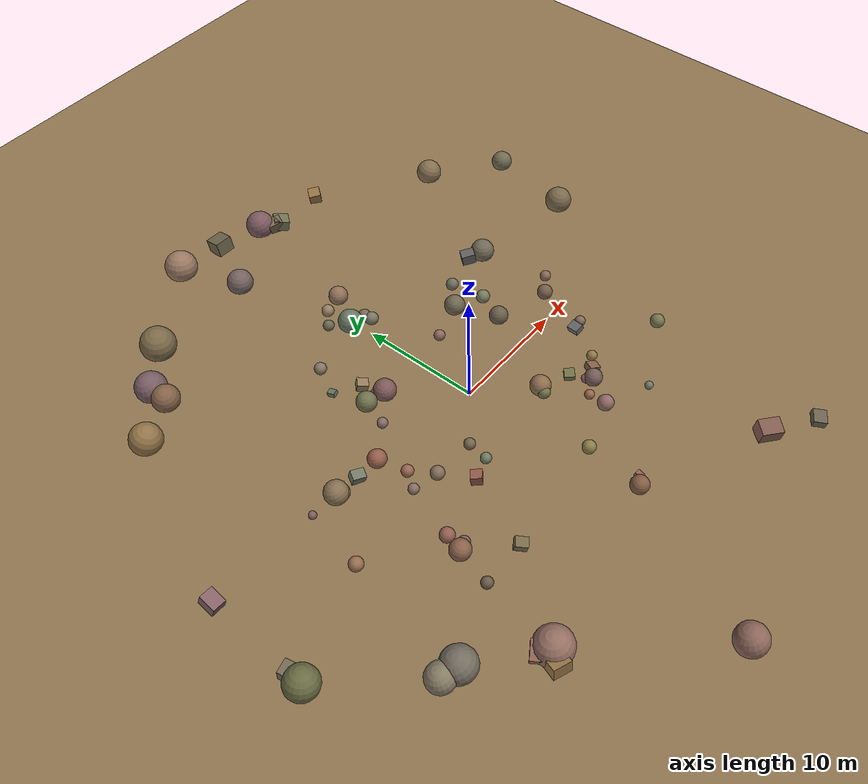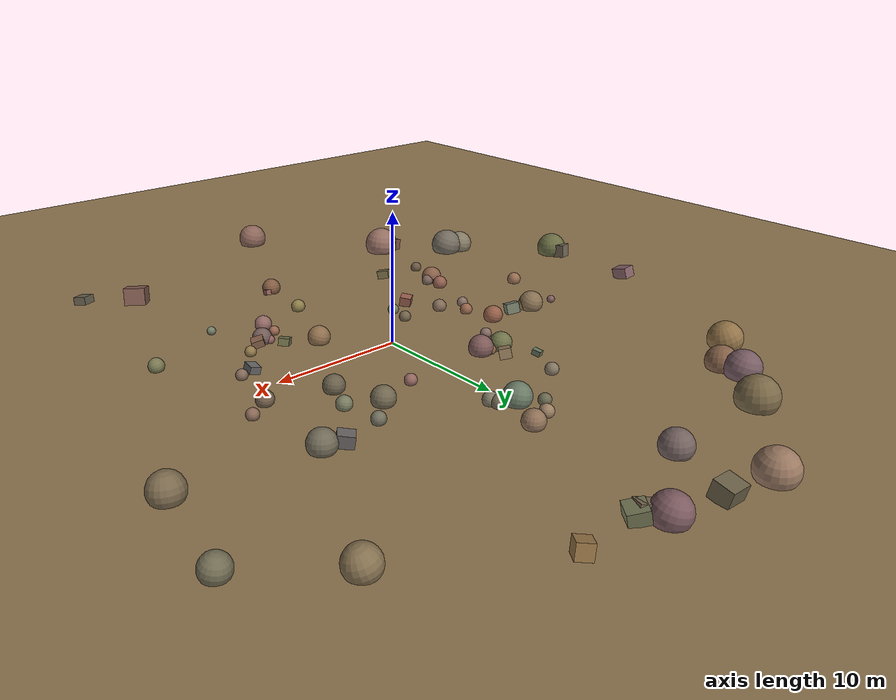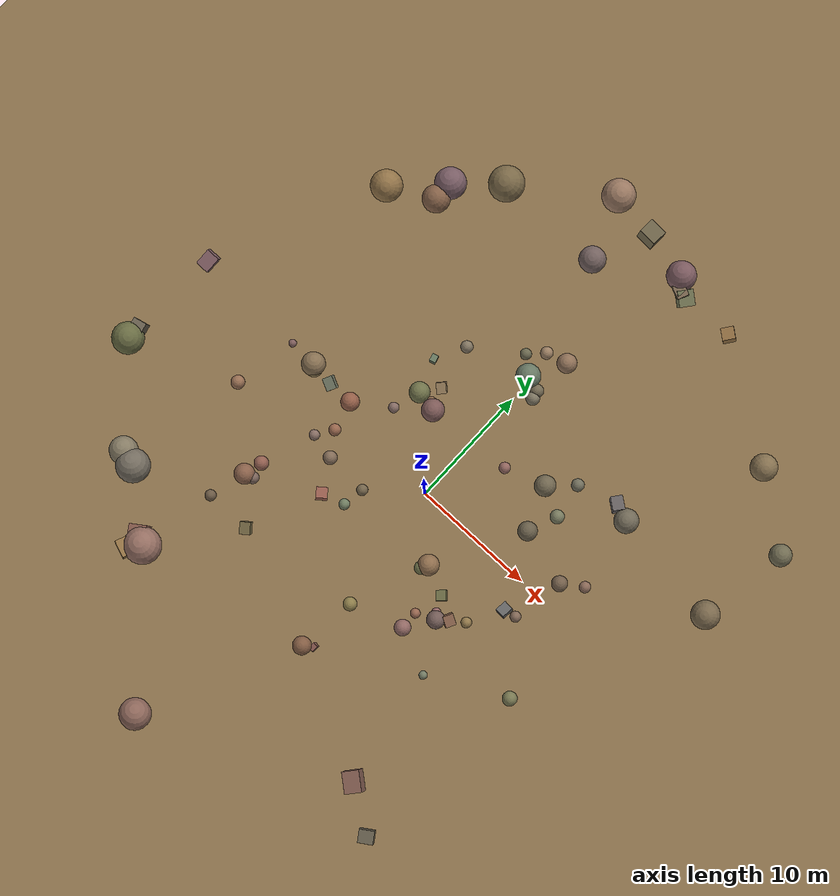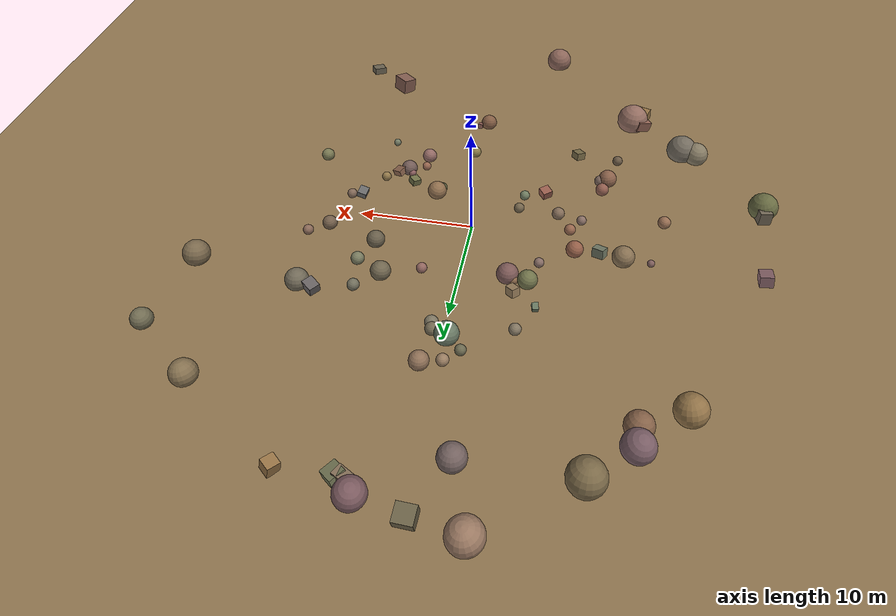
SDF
<?xml version="1.0" ?>
<sdf version="1.8">
  <world name="terrain_world">
    <physics name="1ms" type="ignored">
      <max_step_size>0.001</max_step_size>
      <real_time_factor>1.0</real_time_factor>
    </physics>

    <plugin filename="gz-sim-physics-system" name="gz::sim::systems::Physics"/>
    <plugin filename="gz-sim-user-commands-system" name="gz::sim::systems::UserCommands"/>
    <plugin filename="gz-sim-scene-broadcaster-system" name="gz::sim::systems::SceneBroadcaster"/>
    <plugin filename="gz-sim-contact-system" name="gz::sim::systems::Contact"/>
    <plugin filename="gz-sim-sensors-system" name="gz::sim::systems::Sensors">
      <render_engine>ogre2</render_engine>
    </plugin>
    <plugin filename="gz-sim-imu-system" name="gz::sim::systems::Imu"/>

    <gui fullscreen="0">
      <plugin filename="GzScene3D" name="3D View">
        <gz-gui>
          <title>3D View</title>
          <property type="bool" key="showTitleBar">false</property>
        </gz-gui>
        <engine>ogre2</engine>
        <scene>scene</scene>
        <ambient_light>0.5 0.45 0.4</ambient_light>
        <background_color>0.7 0.75 0.85</background_color>
        <camera_pose>0 0 40 0 1.5708 0</camera_pose>
      </plugin>
      <plugin filename="WorldControl" name="World control">
        <gz-gui><title>World control</title></gz-gui>
        <play_pause>true</play_pause>
        <step>true</step>
      </plugin>
      <plugin filename="WorldStats" name="World stats">
        <gz-gui><title>World stats</title></gz-gui>
        <sim_time>true</sim_time>
        <real_time>true</real_time>
        <real_time_factor>true</real_time_factor>
      </plugin>
    </gui>

    <light type="directional" name="sun">
      <cast_shadows>true</cast_shadows>
      <pose>0 0 50 0 0 0</pose>
      <diffuse>0.9 0.85 0.7 1</diffuse>
      <specular>0.3 0.3 0.2 1</specular>
      <attenuation>
        <range>1000</range>
        <constant>0.9</constant>
        <linear>0.01</linear>
        <quadratic>0.001</quadratic>
      </attenuation>
      <direction>-0.4 0.1 -0.9</direction>
    </light>

    <model name="ground_plane">
      <static>true</static>
      <link name="link">
        <collision name="collision">
          <geometry>
            <plane>
              <normal>0 0 1</normal>
              <size>100 100</size>
            </plane>
          </geometry>
        </collision>
        <visual name="visual">
          <geometry>
            <plane>
              <normal>0 0 1</normal>
              <size>100 100</size>
            </plane>
          </geometry>
          <material>
            <ambient>0.55 0.45 0.3 1</ambient>
            <diffuse>0.55 0.45 0.3 1</diffuse>
          </material>
        </visual>
      </link>
    </model>

    <model name="rock_perimeter_000">
      <static>true</static>
      <pose>23.36 14.89 0.36 0.14 -0.11 4.28</pose>
      <link name="link">
        <collision name="collision">
          <geometry><sphere><radius>0.90</radius></sphere></geometry>
        </collision>
        <visual name="visual">
          <geometry><sphere><radius>0.90</radius></sphere></geometry>
          <material><ambient>0.44 0.42 0.32 1</ambient><diffuse>0.44 0.42 0.32 1</diffuse></material>
        </visual>
      </link>
    </model>

    <model name="rock_perimeter_001">
      <static>true</static>
      <pose>14.36 -22.25 0.40 -0.13 0.10 3.72</pose>
      <link name="link">
        <collision name="collision">
          <geometry><box><size>1.20 1.06 0.64</size></box></geometry>
        </collision>
        <visual name="visual">
          <geometry><box><size>1.20 1.06 0.64</size></box></geometry>
          <material><ambient>0.41 0.38 0.31 1</ambient><diffuse>0.41 0.38 0.31 1</diffuse></material>
        </visual>
      </link>
    </model>

    <model name="rock_perimeter_002">
      <static>true</static>
      <pose>-4.89 -27.36 0.51 -0.15 0.29 1.37</pose>
      <link name="link">
        <collision name="collision">
          <geometry><sphere><radius>1.26</radius></sphere></geometry>
        </collision>
        <visual name="visual">
          <geometry><sphere><radius>1.26</radius></sphere></geometry>
          <material><ambient>0.55 0.40 0.35 1</ambient><diffuse>0.55 0.40 0.35 1</diffuse></material>
        </visual>
      </link>
    </model>

    <model name="rock_perimeter_003">
      <static>true</static>
      <pose>-18.62 15.82 0.52 -0.22 0.29 4.71</pose>
      <link name="link">
        <collision name="collision">
          <geometry><sphere><radius>1.30</radius></sphere></geometry>
        </collision>
        <visual name="visual">
          <geometry><sphere><radius>1.30</radius></sphere></geometry>
          <material><ambient>0.57 0.45 0.28 1</ambient><diffuse>0.57 0.45 0.28 1</diffuse></material>
        </visual>
      </link>
    </model>

    <model name="rock_perimeter_004">
      <static>true</static>
      <pose>-25.19 -5.50 0.50 -0.06 -0.11 1.79</pose>
      <link name="link">
        <collision name="collision">
          <geometry><box><size>1.15 1.11 1.13</size></box></geometry>
        </collision>
        <visual name="visual">
          <geometry><box><size>1.15 1.11 1.13</size></box></geometry>
          <material><ambient>0.44 0.40 0.33 1</ambient><diffuse>0.44 0.40 0.33 1</diffuse></material>
        </visual>
      </link>
    </model>

    <model name="rock_perimeter_005">
      <static>true</static>
      <pose>3.19 26.04 0.48 -0.10 -0.20 6.10</pose>
      <link name="link">
        <collision name="collision">
          <geometry><sphere><radius>1.20</radius></sphere></geometry>
        </collision>
        <visual name="visual">
          <geometry><sphere><radius>1.20</radius></sphere></geometry>
          <material><ambient>0.48 0.35 0.37 1</ambient><diffuse>0.48 0.35 0.37 1</diffuse></material>
        </visual>
      </link>
    </model>

    <model name="rock_perimeter_006">
      <static>true</static>
      <pose>22.13 7.57 0.46 -0.09 0.19 4.01</pose>
      <link name="link">
        <collision name="collision">
          <geometry><sphere><radius>1.15</radius></sphere></geometry>
        </collision>
        <visual name="visual">
          <geometry><sphere><radius>1.15</radius></sphere></geometry>
          <material><ambient>0.48 0.41 0.30 1</ambient><diffuse>0.48 0.41 0.30 1</diffuse></material>
        </visual>
      </link>
    </model>

    <model name="rock_perimeter_007">
      <static>true</static>
      <pose>8.99 25.02 0.43 -0.19 0.09 2.46</pose>
      <link name="link">
        <collision name="collision">
          <geometry><box><size>1.01 1.02 1.01</size></box></geometry>
        </collision>
        <visual name="visual">
          <geometry><box><size>1.01 1.02 1.01</size></box></geometry>
          <material><ambient>0.59 0.45 0.27 1</ambient><diffuse>0.59 0.45 0.27 1</diffuse></material>
        </visual>
      </link>
    </model>

    <model name="rock_perimeter_008">
      <static>true</static>
      <pose>10.84 -19.88 0.58 -0.19 -0.03 2.45</pose>
      <link name="link">
        <collision name="collision">
          <geometry><box><size>1.71 1.35 1.39</size></box></geometry>
        </collision>
        <visual name="visual">
          <geometry><box><size>1.71 1.35 1.39</size></box></geometry>
          <material><ambient>0.51 0.36 0.31 1</ambient><diffuse>0.51 0.36 0.31 1</diffuse></material>
        </visual>
      </link>
    </model>

    <model name="rock_perimeter_009">
      <static>true</static>
      <pose>-15.06 17.68 0.45 0.20 -0.15 0.00</pose>
      <link name="link">
        <collision name="collision">
          <geometry><sphere><radius>1.13</radius></sphere></geometry>
        </collision>
        <visual name="visual">
          <geometry><sphere><radius>1.13</radius></sphere></geometry>
          <material><ambient>0.52 0.38 0.28 1</ambient><diffuse>0.52 0.38 0.28 1</diffuse></material>
        </visual>
      </link>
    </model>

    <model name="rock_perimeter_010">
      <static>true</static>
      <pose>4.58 24.91 0.44 0.08 -0.23 2.47</pose>
      <link name="link">
        <collision name="collision">
          <geometry><box><size>1.29 1.27 0.94</size></box></geometry>
        </collision>
        <visual name="visual">
          <geometry><box><size>1.29 1.27 0.94</size></box></geometry>
          <material><ambient>0.44 0.45 0.32 1</ambient><diffuse>0.44 0.45 0.32 1</diffuse></material>
        </visual>
      </link>
    </model>

    <model name="rock_perimeter_011">
      <static>true</static>
      <pose>17.90 19.11 0.44 0.17 -0.27 1.75</pose>
      <link name="link">
        <collision name="collision">
          <geometry><sphere><radius>1.09</radius></sphere></geometry>
        </collision>
        <visual name="visual">
          <geometry><sphere><radius>1.09</radius></sphere></geometry>
          <material><ambient>0.52 0.44 0.31 1</ambient><diffuse>0.52 0.44 0.31 1</diffuse></material>
        </visual>
      </link>
    </model>

    <model name="rock_perimeter_012">
      <static>true</static>
      <pose>-18.09 -13.61 0.55 0.16 -0.25 4.84</pose>
      <link name="link">
        <collision name="collision">
          <geometry><sphere><radius>1.37</radius></sphere></geometry>
        </collision>
        <visual name="visual">
          <geometry><sphere><radius>1.37</radius></sphere></geometry>
          <material><ambient>0.45 0.42 0.37 1</ambient><diffuse>0.45 0.42 0.37 1</diffuse></material>
        </visual>
      </link>
    </model>

    <model name="rock_perimeter_013">
      <static>true</static>
      <pose>-0.73 26.89 0.52 -0.00 0.20 1.53</pose>
      <link name="link">
        <collision name="collision">
          <geometry><box><size>1.38 1.49 1.24</size></box></geometry>
        </collision>
        <visual name="visual">
          <geometry><box><size>1.38 1.49 1.24</size></box></geometry>
          <material><ambient>0.42 0.38 0.28 1</ambient><diffuse>0.42 0.38 0.28 1</diffuse></material>
        </visual>
      </link>
    </model>

    <model name="rock_perimeter_014">
      <static>true</static>
      <pose>-2.80 22.33 0.44 0.05 0.04 5.76</pose>
      <link name="link">
        <collision name="collision">
          <geometry><sphere><radius>1.09</radius></sphere></geometry>
        </collision>
        <visual name="visual">
          <geometry><sphere><radius>1.09</radius></sphere></geometry>
          <material><ambient>0.45 0.38 0.37 1</ambient><diffuse>0.45 0.38 0.37 1</diffuse></material>
        </visual>
      </link>
    </model>

    <model name="rock_perimeter_015">
      <static>true</static>
      <pose>-24.80 2.06 0.47 -0.27 -0.11 3.15</pose>
      <link name="link">
        <collision name="collision">
          <geometry><box><size>1.11 1.38 0.94</size></box></geometry>
        </collision>
        <visual name="visual">
          <geometry><box><size>1.11 1.38 0.94</size></box></geometry>
          <material><ambient>0.52 0.38 0.40 1</ambient><diffuse>0.52 0.38 0.40 1</diffuse></material>
        </visual>
      </link>
    </model>

    <model name="rock_perimeter_016">
      <static>true</static>
      <pose>4.03 25.03 0.45 -0.12 0.18 2.70</pose>
      <link name="link">
        <collision name="collision">
          <geometry><box><size>1.23 0.94 1.03</size></box></geometry>
        </collision>
        <visual name="visual">
          <geometry><box><size>1.23 0.94 1.03</size></box></geometry>
          <material><ambient>0.49 0.41 0.32 1</ambient><diffuse>0.49 0.41 0.32 1</diffuse></material>
        </visual>
      </link>
    </model>

    <model name="rock_perimeter_017">
      <static>true</static>
      <pose>-4.67 27.48 0.54 0.02 -0.13 3.42</pose>
      <link name="link">
        <collision name="collision">
          <geometry><sphere><radius>1.36</radius></sphere></geometry>
        </collision>
        <visual name="visual">
          <geometry><sphere><radius>1.36</radius></sphere></geometry>
          <material><ambient>0.60 0.47 0.38 1</ambient><diffuse>0.60 0.47 0.38 1</diffuse></material>
        </visual>
      </link>
    </model>

    <model name="rock_perimeter_018">
      <static>true</static>
      <pose>-15.06 19.34 0.52 0.24 -0.04 4.25</pose>
      <link name="link">
        <collision name="collision">
          <geometry><sphere><radius>1.29</radius></sphere></geometry>
        </collision>
        <visual name="visual">
          <geometry><sphere><radius>1.29</radius></sphere></geometry>
          <material><ambient>0.47 0.36 0.39 1</ambient><diffuse>0.47 0.36 0.39 1</diffuse></material>
        </visual>
      </link>
    </model>

    <model name="rock_perimeter_019">
      <static>true</static>
      <pose>-14.11 -17.16 0.52 -0.28 -0.02 2.16</pose>
      <link name="link">
        <collision name="collision">
          <geometry><box><size>1.40 1.48 0.98</size></box></geometry>
        </collision>
        <visual name="visual">
          <geometry><box><size>1.40 1.48 0.98</size></box></geometry>
          <material><ambient>0.56 0.38 0.32 1</ambient><diffuse>0.56 0.38 0.32 1</diffuse></material>
        </visual>
      </link>
    </model>

    <model name="rock_perimeter_020">
      <static>true</static>
      <pose>-11.78 22.26 0.59 0.12 -0.12 0.61</pose>
      <link name="link">
        <collision name="collision">
          <geometry><sphere><radius>1.46</radius></sphere></geometry>
        </collision>
        <visual name="visual">
          <geometry><sphere><radius>1.46</radius></sphere></geometry>
          <material><ambient>0.48 0.41 0.28 1</ambient><diffuse>0.48 0.41 0.28 1</diffuse></material>
        </visual>
      </link>
    </model>

    <model name="rock_perimeter_021">
      <static>true</static>
      <pose>-14.12 -18.47 0.58 -0.14 0.03 5.92</pose>
      <link name="link">
        <collision name="collision">
          <geometry><box><size>1.42 1.36 1.07</size></box></geometry>
        </collision>
        <visual name="visual">
          <geometry><box><size>1.42 1.36 1.07</size></box></geometry>
          <material><ambient>0.58 0.45 0.27 1</ambient><diffuse>0.58 0.45 0.27 1</diffuse></material>
        </visual>
      </link>
    </model>

    <model name="rock_perimeter_022">
      <static>true</static>
      <pose>-25.23 -6.62 0.52 0.04 -0.21 3.20</pose>
      <link name="link">
        <collision name="collision">
          <geometry><sphere><radius>1.29</radius></sphere></geometry>
        </collision>
        <visual name="visual">
          <geometry><sphere><radius>1.29</radius></sphere></geometry>
          <material><ambient>0.41 0.42 0.26 1</ambient><diffuse>0.41 0.42 0.26 1</diffuse></material>
        </visual>
      </link>
    </model>

    <model name="rock_perimeter_023">
      <static>true</static>
      <pose>-13.29 -17.61 0.60 0.05 -0.09 5.22</pose>
      <link name="link">
        <collision name="collision">
          <geometry><sphere><radius>1.49</radius></sphere></geometry>
        </collision>
        <visual name="visual">
          <geometry><sphere><radius>1.49</radius></sphere></geometry>
          <material><ambient>0.58 0.43 0.38 1</ambient><diffuse>0.58 0.43 0.38 1</diffuse></material>
        </visual>
      </link>
    </model>

    <model name="rock_perimeter_024">
      <static>true</static>
      <pose>-19.45 -13.24 0.45 -0.15 -0.15 0.04</pose>
      <link name="link">
        <collision name="collision">
          <geometry><sphere><radius>1.14</radius></sphere></geometry>
        </collision>
        <visual name="visual">
          <geometry><sphere><radius>1.14</radius></sphere></geometry>
          <material><ambient>0.52 0.48 0.39 1</ambient><diffuse>0.52 0.48 0.39 1</diffuse></material>
        </visual>
      </link>
    </model>

    <model name="rock_cluster_0_0">
      <static>true</static>
      <pose>8.70 5.54 0.23 -0.02 0.25 3.48</pose>
      <link name="link">
        <collision name="collision">
          <geometry><sphere><radius>0.57</radius></sphere></geometry>
        </collision>
        <visual name="visual">
          <geometry><sphere><radius>0.57</radius></sphere></geometry>
          <material><ambient>0.47 0.48 0.37 1</ambient><diffuse>0.47 0.48 0.37 1</diffuse></material>
        </visual>
      </link>
    </model>

    <model name="rock_cluster_0_1">
      <static>true</static>
      <pose>7.76 3.17 0.31 -0.06 0.13 2.89</pose>
      <link name="link">
        <collision name="collision">
          <geometry><sphere><radius>0.78</radius></sphere></geometry>
        </collision>
        <visual name="visual">
          <geometry><sphere><radius>0.78</radius></sphere></geometry>
          <material><ambient>0.41 0.37 0.29 1</ambient><diffuse>0.41 0.37 0.29 1</diffuse></material>
        </visual>
      </link>
    </model>

    <model name="rock_cluster_0_2">
      <static>true</static>
      <pose>6.40 6.68 0.34 -0.10 0.16 2.95</pose>
      <link name="link">
        <collision name="collision">
          <geometry><sphere><radius>0.86</radius></sphere></geometry>
        </collision>
        <visual name="visual">
          <geometry><sphere><radius>0.86</radius></sphere></geometry>
          <material><ambient>0.44 0.40 0.31 1</ambient><diffuse>0.44 0.40 0.31 1</diffuse></material>
        </visual>
      </link>
    </model>

    <model name="rock_cluster_0_3">
      <static>true</static>
      <pose>3.16 5.63 0.18 0.14 0.15 0.67</pose>
      <link name="link">
        <collision name="collision">
          <geometry><sphere><radius>0.46</radius></sphere></geometry>
        </collision>
        <visual name="visual">
          <geometry><sphere><radius>0.46</radius></sphere></geometry>
          <material><ambient>0.57 0.40 0.37 1</ambient><diffuse>0.57 0.40 0.37 1</diffuse></material>
        </visual>
      </link>
    </model>

    <model name="rock_cluster_1_0">
      <static>true</static>
      <pose>-6.63 8.21 0.24 0.18 0.04 3.40</pose>
      <link name="link">
        <collision name="collision">
          <geometry><box><size>0.51 0.63 0.40</size></box></geometry>
        </collision>
        <visual name="visual">
          <geometry><box><size>0.51 0.63 0.40</size></box></geometry>
          <material><ambient>0.40 0.46 0.37 1</ambient><diffuse>0.40 0.46 0.37 1</diffuse></material>
        </visual>
      </link>
    </model>

    <model name="rock_cluster_1_1">
      <static>true</static>
      <pose>-4.50 5.61 0.17 -0.02 -0.05 5.52</pose>
      <link name="link">
        <collision name="collision">
          <geometry><sphere><radius>0.42</radius></sphere></geometry>
        </collision>
        <visual name="visual">
          <geometry><sphere><radius>0.42</radius></sphere></geometry>
          <material><ambient>0.55 0.41 0.29 1</ambient><diffuse>0.55 0.41 0.29 1</diffuse></material>
        </visual>
      </link>
    </model>

    <model name="rock_cluster_1_2">
      <static>true</static>
      <pose>-4.64 6.93 0.36 0.14 0.22 5.56</pose>
      <link name="link">
        <collision name="collision">
          <geometry><box><size>0.89 0.77 0.77</size></box></geometry>
        </collision>
        <visual name="visual">
          <geometry><box><size>0.89 0.77 0.77</size></box></geometry>
          <material><ambient>0.58 0.48 0.35 1</ambient><diffuse>0.58 0.48 0.35 1</diffuse></material>
        </visual>
      </link>
    </model>

    <model name="rock_cluster_1_3">
      <static>true</static>
      <pose>-3.96 5.18 0.37 0.06 0.06 4.32</pose>
      <link name="link">
        <collision name="collision">
          <geometry><sphere><radius>0.92</radius></sphere></geometry>
        </collision>
        <visual name="visual">
          <geometry><sphere><radius>0.92</radius></sphere></geometry>
          <material><ambient>0.49 0.35 0.34 1</ambient><diffuse>0.49 0.35 0.34 1</diffuse></material>
        </visual>
      </link>
    </model>

    <model name="rock_cluster_1_4">
      <static>true</static>
      <pose>-5.67 5.53 0.34 0.23 0.12 4.33</pose>
      <link name="link">
        <collision name="collision">
          <geometry><sphere><radius>0.84</radius></sphere></geometry>
        </collision>
        <visual name="visual">
          <geometry><sphere><radius>0.84</radius></sphere></geometry>
          <material><ambient>0.44 0.45 0.29 1</ambient><diffuse>0.44 0.45 0.29 1</diffuse></material>
        </visual>
      </link>
    </model>

    <model name="rock_cluster_2_0">
      <static>true</static>
      <pose>5.68 -8.78 0.26 -0.23 -0.27 1.22</pose>
      <link name="link">
        <collision name="collision">
          <geometry><sphere><radius>0.66</radius></sphere></geometry>
        </collision>
        <visual name="visual">
          <geometry><sphere><radius>0.66</radius></sphere></geometry>
          <material><ambient>0.57 0.41 0.39 1</ambient><diffuse>0.57 0.41 0.39 1</diffuse></material>
        </visual>
      </link>
    </model>

    <model name="rock_cluster_2_1">
      <static>true</static>
      <pose>7.92 -5.98 0.35 -0.28 -0.09 4.24</pose>
      <link name="link">
        <collision name="collision">
          <geometry><box><size>0.85 0.91 0.55</size></box></geometry>
        </collision>
        <visual name="visual">
          <geometry><box><size>0.85 0.91 0.55</size></box></geometry>
          <material><ambient>0.53 0.38 0.29 1</ambient><diffuse>0.53 0.38 0.29 1</diffuse></material>
        </visual>
      </link>
    </model>

    <model name="rock_cluster_2_2">
      <static>true</static>
      <pose>3.90 -3.90 0.34 0.12 0.24 3.20</pose>
      <link name="link">
        <collision name="collision">
          <geometry><sphere><radius>0.85</radius></sphere></geometry>
        </collision>
        <visual name="visual">
          <geometry><sphere><radius>0.85</radius></sphere></geometry>
          <material><ambient>0.56 0.43 0.30 1</ambient><diffuse>0.56 0.43 0.30 1</diffuse></material>
        </visual>
      </link>
    </model>

    <model name="rock_cluster_2_3">
      <static>true</static>
      <pose>6.24 -4.96 0.28 0.04 0.21 3.89</pose>
      <link name="link">
        <collision name="collision">
          <geometry><box><size>0.81 0.83 0.56</size></box></geometry>
        </collision>
        <visual name="visual">
          <geometry><box><size>0.81 0.83 0.56</size></box></geometry>
          <material><ambient>0.44 0.44 0.28 1</ambient><diffuse>0.44 0.44 0.28 1</diffuse></material>
        </visual>
      </link>
    </model>

    <model name="rock_cluster_2_4">
      <static>true</static>
      <pose>7.15 -6.62 0.29 -0.06 0.28 3.29</pose>
      <link name="link">
        <collision name="collision">
          <geometry><sphere><radius>0.73</radius></sphere></geometry>
        </collision>
        <visual name="visual">
          <geometry><sphere><radius>0.73</radius></sphere></geometry>
          <material><ambient>0.45 0.36 0.34 1</ambient><diffuse>0.45 0.36 0.34 1</diffuse></material>
        </visual>
      </link>
    </model>

    <model name="rock_cluster_3_0">
      <static>true</static>
      <pose>-5.90 -5.39 0.32 0.13 -0.07 3.80</pose>
      <link name="link">
        <collision name="collision">
          <geometry><box><size>0.90 0.88 0.75</size></box></geometry>
        </collision>
        <visual name="visual">
          <geometry><box><size>0.90 0.88 0.75</size></box></geometry>
          <material><ambient>0.59 0.36 0.30 1</ambient><diffuse>0.59 0.36 0.30 1</diffuse></material>
        </visual>
      </link>
    </model>

    <model name="rock_cluster_3_1">
      <static>true</static>
      <pose>-4.07 -4.81 0.18 0.05 -0.00 1.66</pose>
      <link name="link">
        <collision name="collision">
          <geometry><sphere><radius>0.44</radius></sphere></geometry>
        </collision>
        <visual name="visual">
          <geometry><sphere><radius>0.44</radius></sphere></geometry>
          <material><ambient>0.44 0.49 0.38 1</ambient><diffuse>0.44 0.49 0.38 1</diffuse></material>
        </visual>
      </link>
    </model>

    <model name="rock_cluster_3_2">
      <static>true</static>
      <pose>-3.80 -3.06 0.18 -0.05 -0.17 4.90</pose>
      <link name="link">
        <collision name="collision">
          <geometry><sphere><radius>0.46</radius></sphere></geometry>
        </collision>
        <visual name="visual">
          <geometry><sphere><radius>0.46</radius></sphere></geometry>
          <material><ambient>0.45 0.39 0.29 1</ambient><diffuse>0.45 0.39 0.29 1</diffuse></material>
        </visual>
      </link>
    </model>

    <model name="rock_cluster_4_0">
      <static>true</static>
      <pose>10.53 -2.52 0.32 0.26 -0.08 4.62</pose>
      <link name="link">
        <collision name="collision">
          <geometry><box><size>0.96 0.82 0.55</size></box></geometry>
        </collision>
        <visual name="visual">
          <geometry><box><size>0.96 0.82 0.55</size></box></geometry>
          <material><ambient>0.40 0.40 0.40 1</ambient><diffuse>0.40 0.40 0.40 1</diffuse></material>
        </visual>
      </link>
    </model>

    <model name="rock_cluster_4_1">
      <static>true</static>
      <pose>12.29 1.83 0.26 -0.03 0.16 1.41</pose>
      <link name="link">
        <collision name="collision">
          <geometry><sphere><radius>0.64</radius></sphere></geometry>
        </collision>
        <visual name="visual">
          <geometry><sphere><radius>0.64</radius></sphere></geometry>
          <material><ambient>0.45 0.37 0.29 1</ambient><diffuse>0.45 0.37 0.29 1</diffuse></material>
        </visual>
      </link>
    </model>

    <model name="rock_cluster_4_2">
      <static>true</static>
      <pose>11.50 -2.32 0.17 0.28 -0.27 5.73</pose>
      <link name="link">
        <collision name="collision">
          <geometry><sphere><radius>0.44</radius></sphere></geometry>
        </collision>
        <visual name="visual">
          <geometry><sphere><radius>0.44</radius></sphere></geometry>
          <material><ambient>0.51 0.41 0.34 1</ambient><diffuse>0.51 0.41 0.34 1</diffuse></material>
        </visual>
      </link>
    </model>

    <model name="rock_cluster_4_3">
      <static>true</static>
      <pose>13.91 2.95 0.18 -0.00 0.08 5.26</pose>
      <link name="link">
        <collision name="collision">
          <geometry><sphere><radius>0.46</radius></sphere></geometry>
        </collision>
        <visual name="visual">
          <geometry><sphere><radius>0.46</radius></sphere></geometry>
          <material><ambient>0.54 0.41 0.34 1</ambient><diffuse>0.54 0.41 0.34 1</diffuse></material>
        </visual>
      </link>
    </model>

    <model name="rock_cluster_5_0">
      <static>true</static>
      <pose>-13.25 1.61 0.39 -0.22 0.23 1.13</pose>
      <link name="link">
        <collision name="collision">
          <geometry><sphere><radius>0.96</radius></sphere></geometry>
        </collision>
        <visual name="visual">
          <geometry><sphere><radius>0.96</radius></sphere></geometry>
          <material><ambient>0.53 0.44 0.32 1</ambient><diffuse>0.53 0.44 0.32 1</diffuse></material>
        </visual>
      </link>
    </model>

    <model name="rock_cluster_5_1">
      <static>true</static>
      <pose>-11.25 1.37 0.37 -0.23 -0.16 2.69</pose>
      <link name="link">
        <collision name="collision">
          <geometry><box><size>1.04 0.81 0.83</size></box></geometry>
        </collision>
        <visual name="visual">
          <geometry><box><size>1.04 0.81 0.83</size></box></geometry>
          <material><ambient>0.44 0.47 0.39 1</ambient><diffuse>0.44 0.47 0.39 1</diffuse></material>
        </visual>
      </link>
    </model>

    <model name="rock_cluster_5_2">
      <static>true</static>
      <pose>-12.98 1.40 0.27 0.20 -0.22 0.37</pose>
      <link name="link">
        <collision name="collision">
          <geometry><sphere><radius>0.69</radius></sphere></geometry>
        </collision>
        <visual name="visual">
          <geometry><sphere><radius>0.69</radius></sphere></geometry>
          <material><ambient>0.57 0.49 0.32 1</ambient><diffuse>0.57 0.49 0.32 1</diffuse></material>
        </visual>
      </link>
    </model>

    <model name="rock_cluster_5_3">
      <static>true</static>
      <pose>-9.15 1.35 0.30 0.01 -0.27 6.10</pose>
      <link name="link">
        <collision name="collision">
          <geometry><sphere><radius>0.75</radius></sphere></geometry>
        </collision>
        <visual name="visual">
          <geometry><sphere><radius>0.75</radius></sphere></geometry>
          <material><ambient>0.58 0.37 0.28 1</ambient><diffuse>0.58 0.37 0.28 1</diffuse></material>
        </visual>
      </link>
    </model>

    <model name="rock_cluster_5_4">
      <static>true</static>
      <pose>-9.44 -2.41 0.17 0.18 -0.07 5.49</pose>
      <link name="link">
        <collision name="collision">
          <geometry><sphere><radius>0.43</radius></sphere></geometry>
        </collision>
        <visual name="visual">
          <geometry><sphere><radius>0.43</radius></sphere></geometry>
          <material><ambient>0.53 0.43 0.39 1</ambient><diffuse>0.53 0.43 0.39 1</diffuse></material>
        </visual>
      </link>
    </model>

    <model name="rock_cluster_6_0">
      <static>true</static>
      <pose>0.95 11.74 0.22 -0.01 -0.00 0.91</pose>
      <link name="link">
        <collision name="collision">
          <geometry><sphere><radius>0.56</radius></sphere></geometry>
        </collision>
        <visual name="visual">
          <geometry><sphere><radius>0.56</radius></sphere></geometry>
          <material><ambient>0.45 0.41 0.32 1</ambient><diffuse>0.45 0.41 0.32 1</diffuse></material>
        </visual>
      </link>
    </model>

    <model name="rock_cluster_6_1">
      <static>true</static>
      <pose>1.23 14.92 0.32 0.00 0.06 3.92</pose>
      <link name="link">
        <collision name="collision">
          <geometry><sphere><radius>0.80</radius></sphere></geometry>
        </collision>
        <visual name="visual">
          <geometry><sphere><radius>0.80</radius></sphere></geometry>
          <material><ambient>0.56 0.44 0.34 1</ambient><diffuse>0.56 0.44 0.34 1</diffuse></material>
        </visual>
      </link>
    </model>

    <model name="rock_cluster_6_2">
      <static>true</static>
      <pose>-1.62 13.33 0.18 0.26 0.13 5.89</pose>
      <link name="link">
        <collision name="collision">
          <geometry><sphere><radius>0.46</radius></sphere></geometry>
        </collision>
        <visual name="visual">
          <geometry><sphere><radius>0.46</radius></sphere></geometry>
          <material><ambient>0.42 0.41 0.31 1</ambient><diffuse>0.42 0.41 0.31 1</diffuse></material>
        </visual>
      </link>
    </model>

    <model name="rock_cluster_6_3">
      <static>true</static>
      <pose>-0.31 12.14 0.40 -0.13 -0.21 0.74</pose>
      <link name="link">
        <collision name="collision">
          <geometry><sphere><radius>1.00</radius></sphere></geometry>
        </collision>
        <visual name="visual">
          <geometry><sphere><radius>1.00</radius></sphere></geometry>
          <material><ambient>0.41 0.47 0.39 1</ambient><diffuse>0.41 0.47 0.39 1</diffuse></material>
        </visual>
      </link>
    </model>

    <model name="rock_cluster_7_0">
      <static>true</static>
      <pose>1.48 -10.17 0.22 -0.01 0.12 0.06</pose>
      <link name="link">
        <collision name="collision">
          <geometry><sphere><radius>0.55</radius></sphere></geometry>
        </collision>
        <visual name="visual">
          <geometry><sphere><radius>0.55</radius></sphere></geometry>
          <material><ambient>0.55 0.49 0.29 1</ambient><diffuse>0.55 0.49 0.29 1</diffuse></material>
        </visual>
      </link>
    </model>

    <model name="rock_cluster_7_1">
      <static>true</static>
      <pose>1.69 -14.45 0.22 0.09 0.27 4.65</pose>
      <link name="link">
        <collision name="collision">
          <geometry><box><size>0.58 0.44 0.43</size></box></geometry>
        </collision>
        <visual name="visual">
          <geometry><box><size>0.58 0.44 0.43</size></box></geometry>
          <material><ambient>0.55 0.36 0.32 1</ambient><diffuse>0.55 0.36 0.32 1</diffuse></material>
        </visual>
      </link>
    </model>

    <model name="rock_cluster_7_2">
      <static>true</static>
      <pose>0.93 -14.98 0.30 -0.19 0.00 2.88</pose>
      <link name="link">
        <collision name="collision">
          <geometry><sphere><radius>0.75</radius></sphere></geometry>
        </collision>
        <visual name="visual">
          <geometry><sphere><radius>0.75</radius></sphere></geometry>
          <material><ambient>0.51 0.36 0.26 1</ambient><diffuse>0.51 0.36 0.26 1</diffuse></material>
        </visual>
      </link>
    </model>

    <model name="rock_cluster_8_0">
      <static>true</static>
      <pose>8.23 8.44 0.21 -0.08 0.20 2.93</pose>
      <link name="link">
        <collision name="collision">
          <geometry><sphere><radius>0.52</radius></sphere></geometry>
        </collision>
        <visual name="visual">
          <geometry><sphere><radius>0.52</radius></sphere></geometry>
          <material><ambient>0.44 0.43 0.36 1</ambient><diffuse>0.44 0.43 0.36 1</diffuse></material>
        </visual>
      </link>
    </model>

    <model name="rock_cluster_8_1">
      <static>true</static>
      <pose>12.96 8.97 0.18 -0.12 0.01 5.60</pose>
      <link name="link">
        <collision name="collision">
          <geometry><box><size>0.37 0.43 0.35</size></box></geometry>
        </collision>
        <visual name="visual">
          <geometry><box><size>0.37 0.43 0.35</size></box></geometry>
          <material><ambient>0.58 0.39 0.29 1</ambient><diffuse>0.58 0.39 0.29 1</diffuse></material>
        </visual>
      </link>
    </model>

    <model name="rock_cluster_8_2">
      <static>true</static>
      <pose>11.47 9.36 0.40 0.14 -0.03 4.05</pose>
      <link name="link">
        <collision name="collision">
          <geometry><box><size>0.96 1.15 0.88</size></box></geometry>
        </collision>
        <visual name="visual">
          <geometry><box><size>0.96 1.15 0.88</size></box></geometry>
          <material><ambient>0.40 0.38 0.38 1</ambient><diffuse>0.40 0.38 0.38 1</diffuse></material>
        </visual>
      </link>
    </model>

    <model name="rock_cluster_8_3">
      <static>true</static>
      <pose>12.84 8.87 0.39 -0.08 0.03 2.82</pose>
      <link name="link">
        <collision name="collision">
          <geometry><sphere><radius>0.99</radius></sphere></geometry>
        </collision>
        <visual name="visual">
          <geometry><sphere><radius>0.99</radius></sphere></geometry>
          <material><ambient>0.44 0.41 0.34 1</ambient><diffuse>0.44 0.41 0.34 1</diffuse></material>
        </visual>
      </link>
    </model>

    <model name="rock_cluster_9_0">
      <static>true</static>
      <pose>-11.35 -8.28 0.33 0.21 0.06 0.44</pose>
      <link name="link">
        <collision name="collision">
          <geometry><sphere><radius>0.83</radius></sphere></geometry>
        </collision>
        <visual name="visual">
          <geometry><sphere><radius>0.83</radius></sphere></geometry>
          <material><ambient>0.54 0.38 0.29 1</ambient><diffuse>0.54 0.38 0.29 1</diffuse></material>
        </visual>
      </link>
    </model>

    <model name="rock_cluster_9_1">
      <static>true</static>
      <pose>-8.40 -11.28 0.39 -0.13 -0.20 2.23</pose>
      <link name="link">
        <collision name="collision">
          <geometry><box><size>0.97 0.84 0.67</size></box></geometry>
        </collision>
        <visual name="visual">
          <geometry><box><size>0.97 0.84 0.67</size></box></geometry>
          <material><ambient>0.46 0.41 0.27 1</ambient><diffuse>0.46 0.41 0.27 1</diffuse></material>
        </visual>
      </link>
    </model>

    <model name="rock_cluster_9_2">
      <static>true</static>
      <pose>-12.15 -11.26 0.18 0.22 -0.30 2.91</pose>
      <link name="link">
        <collision name="collision">
          <geometry><sphere><radius>0.46</radius></sphere></geometry>
        </collision>
        <visual name="visual">
          <geometry><sphere><radius>0.46</radius></sphere></geometry>
          <material><ambient>0.42 0.35 0.27 1</ambient><diffuse>0.42 0.35 0.27 1</diffuse></material>
        </visual>
      </link>
    </model>

    <model name="rock_cluster_9_3">
      <static>true</static>
      <pose>-10.66 -8.05 0.19 0.26 0.21 1.17</pose>
      <link name="link">
        <collision name="collision">
          <geometry><sphere><radius>0.48</radius></sphere></geometry>
        </collision>
        <visual name="visual">
          <geometry><sphere><radius>0.48</radius></sphere></geometry>
          <material><ambient>0.48 0.39 0.35 1</ambient><diffuse>0.48 0.39 0.35 1</diffuse></material>
        </visual>
      </link>
    </model>

    <model name="rock_scatter_000">
      <static>true</static>
      <pose>-7.33 -2.89 0.22 -0.07 -0.01 3.57</pose>
      <link name="link">
        <collision name="collision">
          <geometry><sphere><radius>0.56</radius></sphere></geometry>
        </collision>
        <visual name="visual">
          <geometry><sphere><radius>0.56</radius></sphere></geometry>
          <material><ambient>0.51 0.42 0.34 1</ambient><diffuse>0.51 0.42 0.34 1</diffuse></material>
        </visual>
      </link>
    </model>

    <model name="rock_scatter_001">
      <static>true</static>
      <pose>1.11 11.11 0.22 -0.28 -0.23 0.72</pose>
      <link name="link">
        <collision name="collision">
          <geometry><sphere><radius>0.56</radius></sphere></geometry>
        </collision>
        <visual name="visual">
          <geometry><sphere><radius>0.56</radius></sphere></geometry>
          <material><ambient>0.49 0.46 0.38 1</ambient><diffuse>0.49 0.46 0.38 1</diffuse></material>
        </visual>
      </link>
    </model>

    <model name="rock_scatter_002">
      <static>true</static>
      <pose>-8.54 -1.05 0.20 0.17 -0.17 0.03</pose>
      <link name="link">
        <collision name="collision">
          <geometry><sphere><radius>0.49</radius></sphere></geometry>
        </collision>
        <visual name="visual">
          <geometry><sphere><radius>0.49</radius></sphere></geometry>
          <material><ambient>0.59 0.40 0.30 1</ambient><diffuse>0.59 0.40 0.30 1</diffuse></material>
        </visual>
      </link>
    </model>

    <model name="rock_scatter_003">
      <static>true</static>
      <pose>-16.62 -3.38 0.22 0.14 -0.20 4.25</pose>
      <link name="link">
        <collision name="collision">
          <geometry><sphere><radius>0.56</radius></sphere></geometry>
        </collision>
        <visual name="visual">
          <geometry><sphere><radius>0.56</radius></sphere></geometry>
          <material><ambient>0.59 0.43 0.32 1</ambient><diffuse>0.59 0.43 0.32 1</diffuse></material>
        </visual>
      </link>
    </model>

    <model name="rock_scatter_004">
      <static>true</static>
      <pose>15.38 -7.25 0.23 -0.09 0.27 5.02</pose>
      <link name="link">
        <collision name="collision">
          <geometry><sphere><radius>0.59</radius></sphere></geometry>
        </collision>
        <visual name="visual">
          <geometry><sphere><radius>0.59</radius></sphere></geometry>
          <material><ambient>0.47 0.47 0.32 1</ambient><diffuse>0.47 0.47 0.32 1</diffuse></material>
        </visual>
      </link>
    </model>

    <model name="rock_scatter_005">
      <static>true</static>
      <pose>6.78 -6.16 0.15 0.16 -0.12 2.70</pose>
      <link name="link">
        <collision name="collision">
          <geometry><sphere><radius>0.36</radius></sphere></geometry>
        </collision>
        <visual name="visual">
          <geometry><sphere><radius>0.36</radius></sphere></geometry>
          <material><ambient>0.56 0.38 0.38 1</ambient><diffuse>0.56 0.38 0.38 1</diffuse></material>
        </visual>
      </link>
    </model>

    <model name="rock_scatter_006">
      <static>true</static>
      <pose>-5.39 10.66 0.20 0.25 0.08 3.54</pose>
      <link name="link">
        <collision name="collision">
          <geometry><sphere><radius>0.50</radius></sphere></geometry>
        </collision>
        <visual name="visual">
          <geometry><sphere><radius>0.50</radius></sphere></geometry>
          <material><ambient>0.51 0.46 0.38 1</ambient><diffuse>0.51 0.46 0.38 1</diffuse></material>
        </visual>
      </link>
    </model>

    <model name="rock_scatter_007">
      <static>true</static>
      <pose>5.65 -7.31 0.16 0.18 0.14 5.21</pose>
      <link name="link">
        <collision name="collision">
          <geometry><sphere><radius>0.40</radius></sphere></geometry>
        </collision>
        <visual name="visual">
          <geometry><sphere><radius>0.40</radius></sphere></geometry>
          <material><ambient>0.59 0.40 0.31 1</ambient><diffuse>0.59 0.40 0.31 1</diffuse></material>
        </visual>
      </link>
    </model>

    <model name="rock_scatter_008">
      <static>true</static>
      <pose>-10.96 -6.79 0.24 0.05 -0.07 0.26</pose>
      <link name="link">
        <collision name="collision">
          <geometry><sphere><radius>0.59</radius></sphere></geometry>
        </collision>
        <visual name="visual">
          <geometry><sphere><radius>0.59</radius></sphere></geometry>
          <material><ambient>0.57 0.37 0.31 1</ambient><diffuse>0.57 0.37 0.31 1</diffuse></material>
        </visual>
      </link>
    </model>

    <model name="rock_scatter_009">
      <static>true</static>
      <pose>-15.59 1.73 0.13 -0.09 0.09 0.04</pose>
      <link name="link">
        <collision name="collision">
          <geometry><sphere><radius>0.32</radius></sphere></geometry>
        </collision>
        <visual name="visual">
          <geometry><sphere><radius>0.32</radius></sphere></geometry>
          <material><ambient>0.50 0.37 0.36 1</ambient><diffuse>0.50 0.37 0.36 1</diffuse></material>
        </visual>
      </link>
    </model>

    <model name="rock_scatter_010">
      <static>true</static>
      <pose>9.29 -10.39 0.14 0.21 0.10 5.90</pose>
      <link name="link">
        <collision name="collision">
          <geometry><sphere><radius>0.34</radius></sphere></geometry>
        </collision>
        <visual name="visual">
          <geometry><sphere><radius>0.34</radius></sphere></geometry>
          <material><ambient>0.45 0.48 0.39 1</ambient><diffuse>0.45 0.48 0.39 1</diffuse></material>
        </visual>
      </link>
    </model>

    <model name="rock_scatter_011">
      <static>true</static>
      <pose>-0.48 14.48 0.21 0.07 -0.08 4.50</pose>
      <link name="link">
        <collision name="collision">
          <geometry><sphere><radius>0.51</radius></sphere></geometry>
        </collision>
        <visual name="visual">
          <geometry><sphere><radius>0.51</radius></sphere></geometry>
          <material><ambient>0.60 0.49 0.38 1</ambient><diffuse>0.60 0.49 0.38 1</diffuse></material>
        </visual>
      </link>
    </model>

    <model name="rock_scatter_012">
      <static>true</static>
      <pose>-6.36 3.31 0.17 -0.07 0.12 1.56</pose>
      <link name="link">
        <collision name="collision">
          <geometry><sphere><radius>0.43</radius></sphere></geometry>
        </collision>
        <visual name="visual">
          <geometry><sphere><radius>0.43</radius></sphere></geometry>
          <material><ambient>0.52 0.42 0.39 1</ambient><diffuse>0.52 0.42 0.39 1</diffuse></material>
        </visual>
      </link>
    </model>

    <model name="rock_scatter_013">
      <static>true</static>
      <pose>9.02 -5.20 0.17 -0.00 -0.00 3.12</pose>
      <link name="link">
        <collision name="collision">
          <geometry><sphere><radius>0.43</radius></sphere></geometry>
        </collision>
        <visual name="visual">
          <geometry><sphere><radius>0.43</radius></sphere></geometry>
          <material><ambient>0.57 0.47 0.29 1</ambient><diffuse>0.57 0.47 0.29 1</diffuse></material>
        </visual>
      </link>
    </model>

    <model name="rock_scatter_014">
      <static>true</static>
      <pose>3.61 -4.45 0.21 -0.28 0.07 4.53</pose>
      <link name="link">
        <collision name="collision">
          <geometry><sphere><radius>0.53</radius></sphere></geometry>
        </collision>
        <visual name="visual">
          <geometry><sphere><radius>0.53</radius></sphere></geometry>
          <material><ambient>0.44 0.45 0.29 1</ambient><diffuse>0.44 0.45 0.29 1</diffuse></material>
        </visual>
      </link>
    </model>

  </world>
</sdf>
